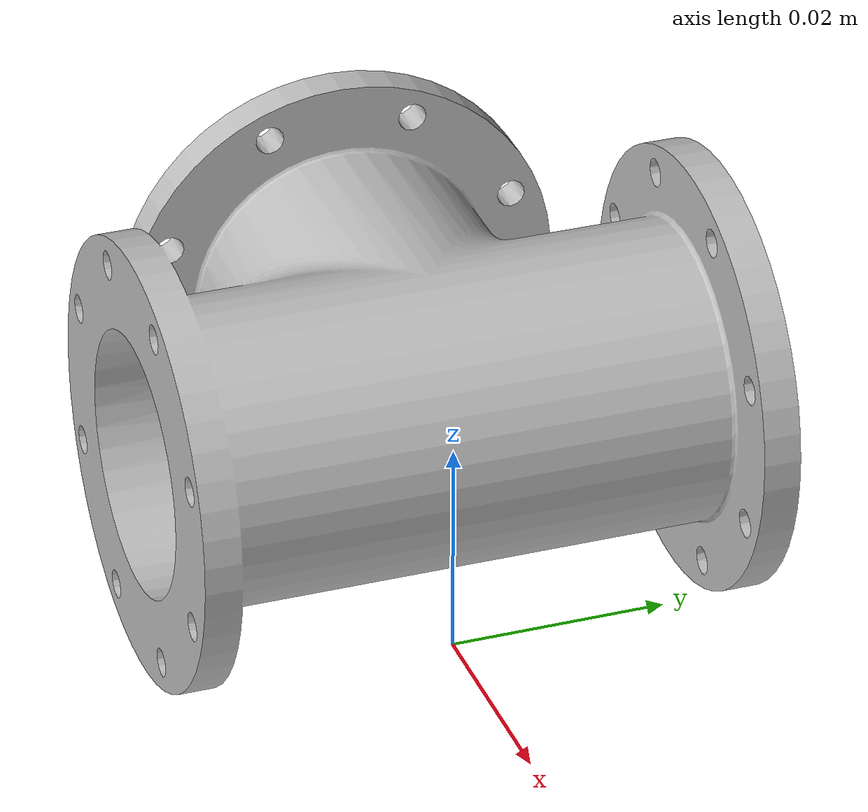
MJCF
<mujoco model="t_junction">
  <asset>
    <mesh name="t_junction" file="T_junction.STL" scale="0.003 0.003 0.003"/>
  </asset>
  <worldbody>
    <body name="model">
      <geom name="visual" type="mesh" mesh="t_junction" contype="0" conaffinity="0" group="2" rgba="0.75 0.75 0.75 1"/>
      <geom name="collision_base" type="box" pos="-0.010 0 0.02035" size="0.02365 0.027 0.02031" group="3"/>
    </body>
  </worldbody>
</mujoco>
